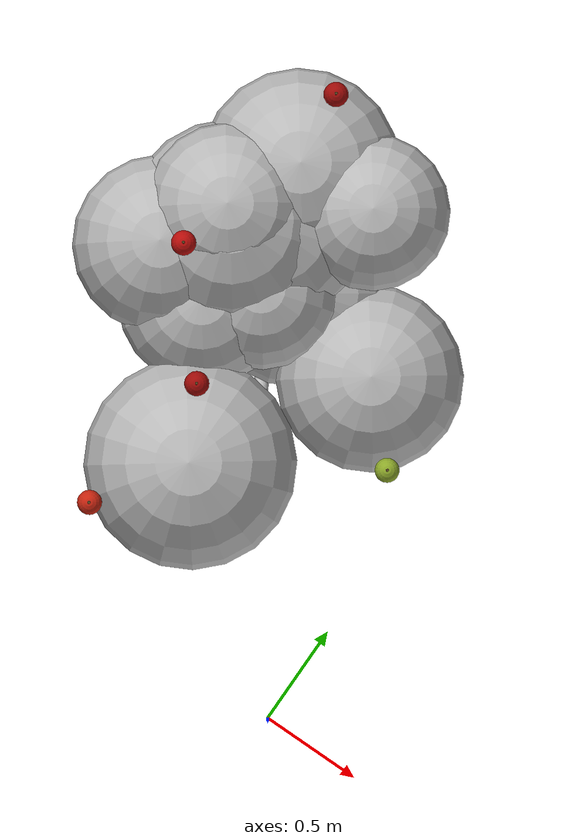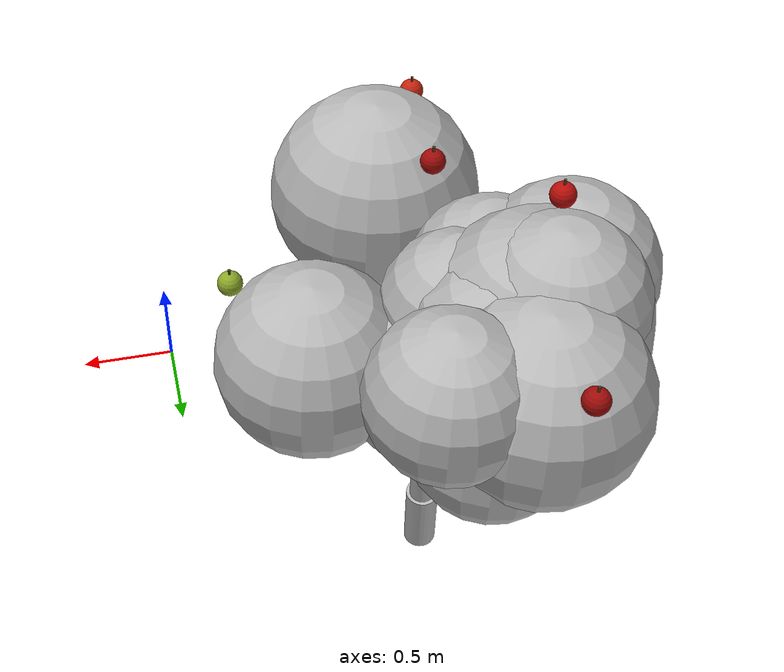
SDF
<sdf version="1.6">
 <world name="default">
  <model name="tree_r3_t7">
   <static>true</static>
   <link name="tree_r3_t7_trunk0">
    <pose>-1.0874 1.5131 0.1819 -0.0398 0.0248 0</pose>
    <collision name="tree_r3_t7_trunk0_c">
     <geometry><cylinder><radius>0.0783</radius><length>0.3856</length></cylinder></geometry>
    </collision>
    <visual name="tree_r3_t7_trunk0_v">
     <geometry><cylinder><radius>0.0783</radius><length>0.3856</length></cylinder></geometry>
     <material>
      <script>
       <uri>model://orchard/materials/scripts</uri>
       <uri>model://orchard/materials/textures</uri>
       <name>Orchard/Bark</name>
      </script>
     </material>
    </visual>
   </link>
   <link name="tree_r3_t7_trunk1">
    <pose>-1.0784 1.5275 0.5457 -0.0398 0.0248 0</pose>
    <visual name="tree_r3_t7_trunk1_v">
     <geometry><cylinder><radius>0.0611</radius><length>0.3856</length></cylinder></geometry>
     <material>
      <script>
       <uri>model://orchard/materials/scripts</uri>
       <uri>model://orchard/materials/textures</uri>
       <name>Orchard/Bark</name>
      </script>
     </material>
    </visual>
   </link>
   <link name="tree_r3_t7_trunk2">
    <pose>-1.0694 1.5420 0.9094 -0.0398 0.0248 0</pose>
    <visual name="tree_r3_t7_trunk2_v">
     <geometry><cylinder><radius>0.0439</radius><length>0.3856</length></cylinder></geometry>
     <material>
      <script>
       <uri>model://orchard/materials/scripts</uri>
       <uri>model://orchard/materials/textures</uri>
       <name>Orchard/Bark</name>
      </script>
     </material>
    </visual>
   </link>
   <link name="tree_r3_t7_br0">
    <pose>-0.7151 1.5115 1.2895 0.0000 1.0578 -0.1076</pose>
    <visual name="tree_r3_t7_br0_v">
     <geometry><cylinder><radius>0.0303</radius><length>0.8076</length></cylinder></geometry>
     <material>
      <script>
       <uri>model://orchard/materials/scripts</uri>
       <uri>model://orchard/materials/textures</uri>
       <name>Orchard/Bark</name>
      </script>
     </material>
    </visual>
   </link>
   <link name="tree_r3_t7_br1">
    <pose>-0.9745 1.8633 1.3417 0.0000 0.9170 1.2908</pose>
    <visual name="tree_r3_t7_br1_v">
     <geometry><cylinder><radius>0.0223</radius><length>0.8235</length></cylinder></geometry>
     <material>
      <script>
       <uri>model://orchard/materials/scripts</uri>
       <uri>model://orchard/materials/textures</uri>
       <name>Orchard/Bark</name>
      </script>
     </material>
    </visual>
   </link>
   <link name="tree_r3_t7_br2">
    <pose>-1.1777 1.7236 1.3036 0.0000 0.7747 2.1452</pose>
    <visual name="tree_r3_t7_br2_v">
     <geometry><cylinder><radius>0.0316</radius><length>0.5940</length></cylinder></geometry>
     <material>
      <script>
       <uri>model://orchard/materials/scripts</uri>
       <uri>model://orchard/materials/textures</uri>
       <name>Orchard/Bark</name>
      </script>
     </material>
    </visual>
   </link>
   <link name="tree_r3_t7_br3">
    <pose>-1.2995 1.6249 1.3670 0.0000 0.7296 2.8297</pose>
    <visual name="tree_r3_t7_br3_v">
     <geometry><cylinder><radius>0.0355</radius><length>0.7397</length></cylinder></geometry>
     <material>
      <script>
       <uri>model://orchard/materials/scripts</uri>
       <uri>model://orchard/materials/textures</uri>
       <name>Orchard/Bark</name>
      </script>
     </material>
    </visual>
   </link>
   <link name="tree_r3_t7_br4">
    <pose>-1.1297 1.3069 1.2759 0.0000 0.9365 4.4507</pose>
    <visual name="tree_r3_t7_br4_v">
     <geometry><cylinder><radius>0.0269</radius><length>0.6230</length></cylinder></geometry>
     <material>
      <script>
       <uri>model://orchard/materials/scripts</uri>
       <uri>model://orchard/materials/textures</uri>
       <name>Orchard/Bark</name>
      </script>
     </material>
    </visual>
   </link>
   <link name="tree_r3_t7_br5">
    <pose>-0.9287 1.3008 1.2999 0.0000 0.9363 5.2137</pose>
    <visual name="tree_r3_t7_br5_v">
     <geometry><cylinder><radius>0.0330</radius><length>0.7035</length></cylinder></geometry>
     <material>
      <script>
       <uri>model://orchard/materials/scripts</uri>
       <uri>model://orchard/materials/textures</uri>
       <name>Orchard/Bark</name>
      </script>
     </material>
    </visual>
   </link>
   <link name="tree_r3_t7_fol0">
    <pose>-0.9545 1.7278 1.5196 0 0 0</pose>
    <visual name="tree_r3_t7_fol0_v">
     <geometry><sphere><radius>0.3587</radius></sphere></geometry>
     <material>
      <script>
       <uri>model://orchard/materials/scripts</uri>
       <uri>model://orchard/materials/textures</uri>
       <name>Orchard/Foliage0</name>
      </script>
     </material>
    </visual>
   </link>
   <link name="tree_r3_t7_fol1">
    <pose>-0.5283 1.5745 1.5639 0 0 0</pose>
    <visual name="tree_r3_t7_fol1_v">
     <geometry><sphere><radius>0.4224</radius></sphere></geometry>
     <material>
      <script>
       <uri>model://orchard/materials/scripts</uri>
       <uri>model://orchard/materials/textures</uri>
       <name>Orchard/Foliage0</name>
      </script>
     </material>
    </visual>
   </link>
   <link name="tree_r3_t7_fol2">
    <pose>-1.3152 2.1638 1.8088 0 0 0</pose>
    <visual name="tree_r3_t7_fol2_v">
     <geometry><sphere><radius>0.4461</radius></sphere></geometry>
     <material>
      <script>
       <uri>model://orchard/materials/scripts</uri>
       <uri>model://orchard/materials/textures</uri>
       <name>Orchard/Foliage0</name>
      </script>
     </material>
    </visual>
   </link>
   <link name="tree_r3_t7_fol3">
    <pose>-1.4143 1.7140 1.6650 0 0 0</pose>
    <visual name="tree_r3_t7_fol3_v">
     <geometry><sphere><radius>0.4523</radius></sphere></geometry>
     <material>
      <script>
       <uri>model://orchard/materials/scripts</uri>
       <uri>model://orchard/materials/textures</uri>
       <name>Orchard/Foliage1</name>
      </script>
     </material>
    </visual>
   </link>
   <link name="tree_r3_t7_fol4">
    <pose>-1.1484 2.1167 1.5562 0 0 0</pose>
    <visual name="tree_r3_t7_fol4_v">
     <geometry><sphere><radius>0.3586</radius></sphere></geometry>
     <material>
      <script>
       <uri>model://orchard/materials/scripts</uri>
       <uri>model://orchard/materials/textures</uri>
       <name>Orchard/Foliage0</name>
      </script>
     </material>
    </visual>
   </link>
   <link name="tree_r3_t7_fol5">
    <pose>-1.3374 1.4306 1.7243 0 0 0</pose>
    <visual name="tree_r3_t7_fol5_v">
     <geometry><sphere><radius>0.3783</radius></sphere></geometry>
     <material>
      <script>
       <uri>model://orchard/materials/scripts</uri>
       <uri>model://orchard/materials/textures</uri>
       <name>Orchard/Foliage0</name>
      </script>
     </material>
    </visual>
   </link>
   <link name="tree_r3_t7_fol6">
    <pose>-0.9394 2.1765 1.9230 0 0 0</pose>
    <visual name="tree_r3_t7_fol6_v">
     <geometry><sphere><radius>0.3481</radius></sphere></geometry>
     <material>
      <script>
       <uri>model://orchard/materials/scripts</uri>
       <uri>model://orchard/materials/textures</uri>
       <name>Orchard/Foliage0</name>
      </script>
     </material>
    </visual>
   </link>
   <link name="tree_r3_t7_fol7">
    <pose>-1.1455 1.6135 1.7740 0 0 0</pose>
    <visual name="tree_r3_t7_fol7_v">
     <geometry><sphere><radius>0.3467</radius></sphere></geometry>
     <material>
      <script>
       <uri>model://orchard/materials/scripts</uri>
       <uri>model://orchard/materials/textures</uri>
       <name>Orchard/Foliage0</name>
      </script>
     </material>
    </visual>
   </link>
   <link name="tree_r3_t7_fol8">
    <pose>-0.9738 0.8057 1.7618 0 0 0</pose>
    <visual name="tree_r3_t7_fol8_v">
     <geometry><sphere><radius>0.4762</radius></sphere></geometry>
     <material>
      <script>
       <uri>model://orchard/materials/scripts</uri>
       <uri>model://orchard/materials/textures</uri>
       <name>Orchard/Foliage2</name>
      </script>
     </material>
    </visual>
   </link>
   <link name="tree_r3_t7_fol9">
    <pose>-1.0105 1.6551 1.3933 0 0 0</pose>
    <visual name="tree_r3_t7_fol9_v">
     <geometry><sphere><radius>0.3715</radius></sphere></geometry>
     <material>
      <script>
       <uri>model://orchard/materials/scripts</uri>
       <uri>model://orchard/materials/textures</uri>
       <name>Orchard/Foliage2</name>
      </script>
     </material>
    </visual>
   </link>
   <link name="tree_r3_t7_fol10">
    <pose>-1.4745 1.8330 1.9666 0 0 0</pose>
    <visual name="tree_r3_t7_fol10_v">
     <geometry><sphere><radius>0.3756</radius></sphere></geometry>
     <material>
      <script>
       <uri>model://orchard/materials/scripts</uri>
       <uri>model://orchard/materials/textures</uri>
       <name>Orchard/Foliage0</name>
      </script>
     </material>
    </visual>
   </link>
   <link name="tree_r3_t7_fol11">
    <pose>-1.4233 1.7798 1.8232 0 0 0</pose>
    <visual name="tree_r3_t7_fol11_v">
     <geometry><sphere><radius>0.4735</radius></sphere></geometry>
     <material>
      <script>
       <uri>model://orchard/materials/scripts</uri>
       <uri>model://orchard/materials/textures</uri>
       <name>Orchard/Foliage2</name>
      </script>
     </material>
    </visual>
   </link>
   <link name="tree_r3_t7_fol12">
    <pose>-1.2721 1.8642 1.7610 0 0 0</pose>
    <visual name="tree_r3_t7_fol12_v">
     <geometry><sphere><radius>0.4356</radius></sphere></geometry>
     <material>
      <script>
       <uri>model://orchard/materials/scripts</uri>
       <uri>model://orchard/materials/textures</uri>
       <name>Orchard/Foliage2</name>
      </script>
     </material>
    </visual>
   </link>
   <link name="tree_r3_t7_fol13">
    <pose>-1.6306 1.5360 1.8270 0 0 0</pose>
    <visual name="tree_r3_t7_fol13_v">
     <geometry><sphere><radius>0.3978</radius></sphere></geometry>
     <material>
      <script>
       <uri>model://orchard/materials/scripts</uri>
       <uri>model://orchard/materials/textures</uri>
       <name>Orchard/Foliage2</name>
      </script>
     </material>
    </visual>
   </link>
   <link name="tree_r3_t7_ap0">
    <pose>-1.5341 1.5829 2.3052 0 0 0</pose>
    <visual name="tree_r3_t7_ap0_v">
     <geometry><sphere><radius>0.0550</radius></sphere></geometry>
     <material>
      <ambient>0.288 0.020 0.016 1.00</ambient>
      <diffuse>0.720 0.050 0.040 1.00</diffuse>
      <specular>0.45 0.35 0.32 1</specular>
     </material>
    </visual>
   </link>
   <link name="tree_r3_t7_st0">
    <pose>-1.5341 1.5829 2.3575 0 0 0</pose>
    <visual name="tree_r3_t7_st0_v">
     <geometry><cylinder><radius>0.0060</radius><length>0.0500</length></cylinder></geometry>
     <material><ambient>0.128 0.096 0.040 1.00</ambient><diffuse>0.320 0.240 0.100 1.00</diffuse></material>
    </visual>
   </link>
   <link name="tree_r3_t7_ap1">
    <pose>-1.2381 0.4126 1.9899 0 0 0</pose>
    <visual name="tree_r3_t7_ap1_v">
     <geometry><sphere><radius>0.0550</radius></sphere></geometry>
     <material>
      <ambient>0.312 0.056 0.024 1.00</ambient>
      <diffuse>0.780 0.140 0.060 1.00</diffuse>
      <specular>0.45 0.35 0.32 1</specular>
     </material>
    </visual>
   </link>
   <link name="tree_r3_t7_st1">
    <pose>-1.2381 0.4126 2.0421 0 0 0</pose>
    <visual name="tree_r3_t7_st1_v">
     <geometry><cylinder><radius>0.0060</radius><length>0.0500</length></cylinder></geometry>
     <material><ambient>0.128 0.096 0.040 1.00</ambient><diffuse>0.320 0.240 0.100 1.00</diffuse></material>
    </visual>
   </link>
   <link name="tree_r3_t7_ap2">
    <pose>-1.1425 1.1111 2.1550 0 0 0</pose>
    <visual name="tree_r3_t7_ap2_v">
     <geometry><sphere><radius>0.0550</radius></sphere></geometry>
     <material>
      <ambient>0.248 0.016 0.012 1.00</ambient>
      <diffuse>0.620 0.040 0.030 1.00</diffuse>
      <specular>0.45 0.35 0.32 1</specular>
     </material>
    </visual>
   </link>
   <link name="tree_r3_t7_st2">
    <pose>-1.1425 1.1111 2.2072 0 0 0</pose>
    <visual name="tree_r3_t7_st2_v">
     <geometry><cylinder><radius>0.0060</radius><length>0.0500</length></cylinder></geometry>
     <material><ambient>0.128 0.096 0.040 1.00</ambient><diffuse>0.320 0.240 0.100 1.00</diffuse></material>
    </visual>
   </link>
   <link name="tree_r3_t7_ap3">
    <pose>-0.2341 1.2758 1.7805 0 0 0</pose>
    <visual name="tree_r3_t7_ap3_v">
     <geometry><sphere><radius>0.0550</radius></sphere></geometry>
     <material>
      <ambient>0.220 0.264 0.064 1.00</ambient>
      <diffuse>0.550 0.660 0.160 1.00</diffuse>
      <specular>0.45 0.35 0.32 1</specular>
     </material>
    </visual>
   </link>
   <link name="tree_r3_t7_st3">
    <pose>-0.2341 1.2758 1.8327 0 0 0</pose>
    <visual name="tree_r3_t7_st3_v">
     <geometry><cylinder><radius>0.0060</radius><length>0.0500</length></cylinder></geometry>
     <material><ambient>0.128 0.096 0.040 1.00</ambient><diffuse>0.320 0.240 0.100 1.00</diffuse></material>
    </visual>
   </link>
   <link name="tree_r3_t7_ap4">
    <pose>-1.3588 2.5008 2.1696 0 0 0</pose>
    <visual name="tree_r3_t7_ap4_v">
     <geometry><sphere><radius>0.0550</radius></sphere></geometry>
     <material>
      <ambient>0.248 0.016 0.012 1.00</ambient>
      <diffuse>0.620 0.040 0.030 1.00</diffuse>
      <specular>0.45 0.35 0.32 1</specular>
     </material>
    </visual>
   </link>
   <link name="tree_r3_t7_st4">
    <pose>-1.3588 2.5008 2.2219 0 0 0</pose>
    <visual name="tree_r3_t7_st4_v">
     <geometry><cylinder><radius>0.0060</radius><length>0.0500</length></cylinder></geometry>
     <material><ambient>0.128 0.096 0.040 1.00</ambient><diffuse>0.320 0.240 0.100 1.00</diffuse></material>
    </visual>
   </link>
  </model>
 </world>
</sdf>
